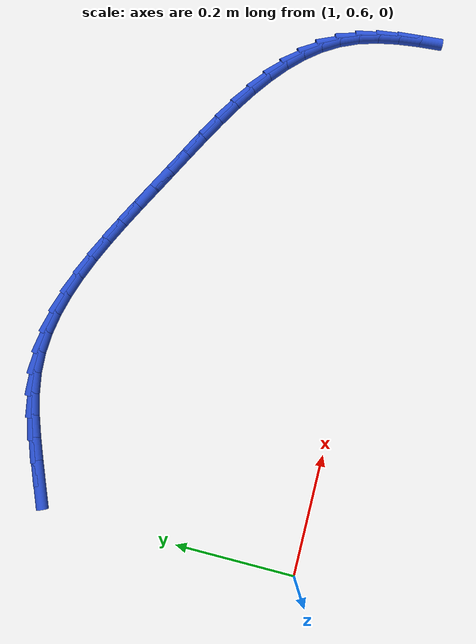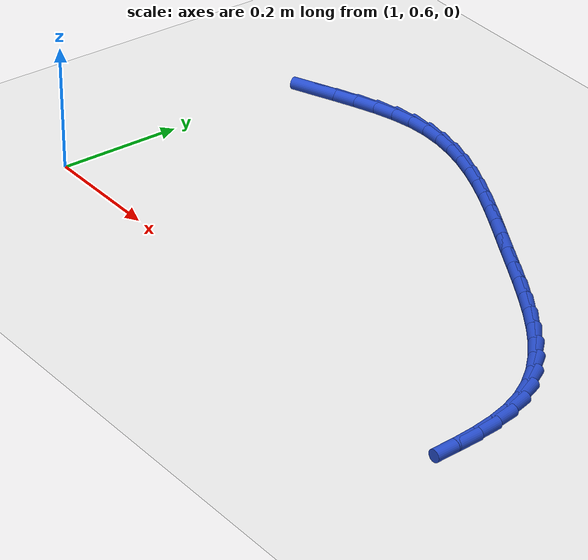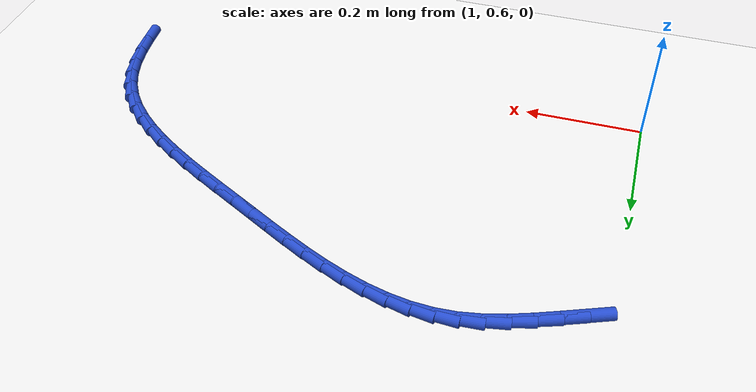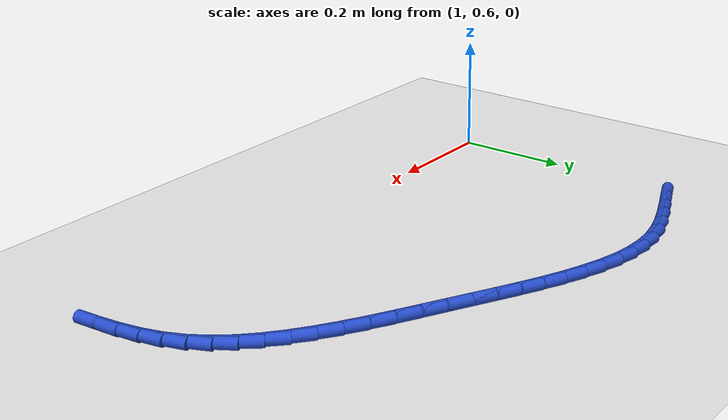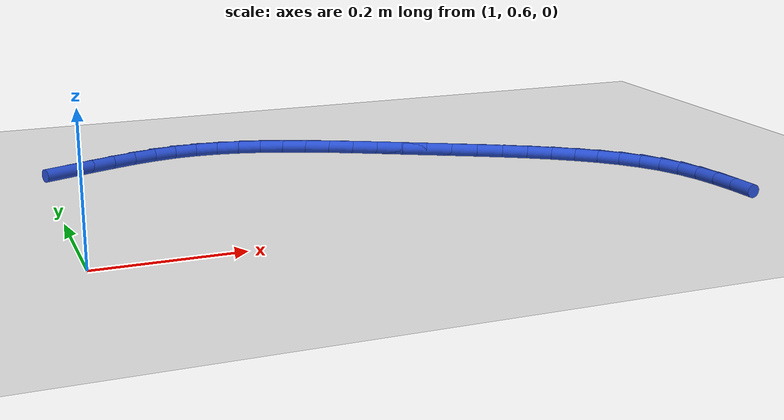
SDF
<sdf version="1.6">
 <world name="default">
  <model name="ground_plane">
   <static>1</static>
   <link name="link">
    <collision name="collision">
     <geometry><plane><normal>0 0 1</normal><size>100 100</size></plane></geometry>
     <surface><friction><ode><mu>100</mu><mu2>50</mu2></ode></friction></surface>
    </collision>
    <visual name="visual">
     <cast_shadows>0</cast_shadows>
     <geometry><plane><normal>0 0 1</normal><size>100 100</size></plane></geometry>
     <material>
      <script><uri>file://media/materials/scripts/gazebo.material</uri><name>Gazebo/WhiteGlow</name></script>
     </material>
    </visual>
   </link>
  </model>
  <model name="line">
   <link name="link_45">
    <pose>1.0397477423579957 1.0403196989083119 0.01 0 1.57 0.3899154456964672</pose>
    <collision name="collision">
     <geometry><cylinder><radius>0.01</radius><length>0.08</length></cylinder></geometry>
    </collision>
    <visual name="visual">
     <material>
      <script><name>Gazebo/Blue</name><uri>file://media/materials/scripts/gazebo.material</uri></script>
     </material>
     <geometry><cylinder><radius>0.01</radius><length>0.08</length></cylinder></geometry>
    </visual>
   </link>
   <link name="link_46">
    <pose>1.0750885546746156 1.0548432205125227 0.01 0 1.57 0.3790611823252952</pose>
    <collision name="collision">
     <geometry><cylinder><radius>0.01</radius><length>0.08</length></cylinder></geometry>
    </collision>
    <visual name="visual">
     <material>
      <script><name>Gazebo/Blue</name><uri>file://media/materials/scripts/gazebo.material</uri></script>
     </material>
     <geometry><cylinder><radius>0.01</radius><length>0.08</length></cylinder></geometry>
    </visual>
   </link>
   <link name="link_47">
    <pose>1.1101549726138393 1.0688110353576217 0.01 0 1.57 0.3427349114920555</pose>
    <collision name="collision">
     <geometry><cylinder><radius>0.01</radius><length>0.08</length></cylinder></geometry>
    </collision>
    <visual name="visual">
     <material>
      <script><name>Gazebo/Blue</name><uri>file://media/materials/scripts/gazebo.material</uri></script>
     </material>
     <geometry><cylinder><radius>0.01</radius><length>0.08</length></cylinder></geometry>
    </visual>
   </link>
   <link name="link_48">
    <pose>1.1450290878614144 1.081254712395185 0.01 0 1.57 0.27879329243875894</pose>
    <collision name="collision">
     <geometry><cylinder><radius>0.01</radius><length>0.08</length></cylinder></geometry>
    </collision>
    <visual name="visual">
     <material>
      <script><name>Gazebo/Blue</name><uri>file://media/materials/scripts/gazebo.material</uri></script>
     </material>
     <geometry><cylinder><radius>0.01</radius><length>0.08</length></cylinder></geometry>
    </visual>
   </link>
   <link name="link_49">
    <pose>1.179792992103088 1.091205820576789 0.01 0 1.57 0.1847123536411379</pose>
    <collision name="collision">
     <geometry><cylinder><radius>0.01</radius><length>0.08</length></cylinder></geometry>
    </collision>
    <visual name="visual">
     <material>
      <script><name>Gazebo/Blue</name><uri>file://media/materials/scripts/gazebo.material</uri></script>
     </material>
     <geometry><cylinder><radius>0.01</radius><length>0.08</length></cylinder></geometry>
    </visual>
   </link>
   <link name="link_50">
    <pose>1.2145287770246074 1.09769592885401 0.01 0 1.57 0.06416200103219727</pose>
    <collision name="collision">
     <geometry><cylinder><radius>0.01</radius><length>0.08</length></cylinder></geometry>
    </collision>
    <visual name="visual">
     <material>
      <script><name>Gazebo/Blue</name><uri>file://media/materials/scripts/gazebo.material</uri></script>
     </material>
     <geometry><cylinder><radius>0.01</radius><length>0.08</length></cylinder></geometry>
    </visual>
   </link>
   <link name="link_51">
    <pose>1.249310390346295 1.0999306542169203 0.01 0 1.57 -0.0541422027024987</pose>
    <collision name="collision">
     <geometry><cylinder><radius>0.01</radius><length>0.08</length></cylinder></geometry>
    </collision>
    <visual name="visual">
     <material>
      <script><name>Gazebo/Blue</name><uri>file://media/materials/scripts/gazebo.material</uri></script>
     </material>
     <geometry><cylinder><radius>0.01</radius><length>0.08</length></cylinder></geometry>
    </visual>
   </link>
   <link name="link_52">
    <pose>1.2841684554701638 1.0980415155016978 0.01 0 1.57 -0.15817192943619007</pose>
    <collision name="collision">
     <geometry><cylinder><radius>0.01</radius><length>0.08</length></cylinder></geometry>
    </collision>
    <visual name="visual">
     <material>
      <script><name>Gazebo/Blue</name><uri>file://media/materials/scripts/gazebo.material</uri></script>
     </material>
     <geometry><cylinder><radius>0.01</radius><length>0.08</length></cylinder></geometry>
    </visual>
   </link>
   <link name="link_53">
    <pose>1.3191192457168404 1.0924667130426873 0.01 0 1.57 -0.2465115295069356</pose>
    <collision name="collision">
     <geometry><cylinder><radius>0.01</radius><length>0.08</length></cylinder></geometry>
    </collision>
    <visual name="visual">
     <material>
      <script><name>Gazebo/Blue</name><uri>file://media/materials/scripts/gazebo.material</uri></script>
     </material>
     <geometry><cylinder><radius>0.01</radius><length>0.08</length></cylinder></geometry>
    </visual>
   </link>
   <link name="link_54">
    <pose>1.3541790251305217 1.0836446454246573 0.01 0 1.57 -0.31925683191862525</pose>
    <collision name="collision">
     <geometry><cylinder><radius>0.01</radius><length>0.08</length></cylinder></geometry>
    </collision>
    <visual name="visual">
     <material>
      <script><name>Gazebo/Blue</name><uri>file://media/materials/scripts/gazebo.material</uri></script>
     </material>
     <geometry><cylinder><radius>0.01</radius><length>0.08</length></cylinder></geometry>
    </visual>
   </link>
   <link name="link_55">
    <pose>1.3893640577554038 1.0720137112323747 0.01 0 1.57 -0.37734912172325175</pose>
    <collision name="collision">
     <geometry><cylinder><radius>0.01</radius><length>0.08</length></cylinder></geometry>
    </collision>
    <visual name="visual">
     <material>
      <script><name>Gazebo/Blue</name><uri>file://media/materials/scripts/gazebo.material</uri></script>
     </material>
     <geometry><cylinder><radius>0.01</radius><length>0.08</length></cylinder></geometry>
    </visual>
   </link>
   <link name="link_56">
    <pose>1.4246906076356827 1.058012309050608 0.01 0 1.57 -0.4220456286937595</pose>
    <collision name="collision">
     <geometry><cylinder><radius>0.01</radius><length>0.08</length></cylinder></geometry>
    </collision>
    <visual name="visual">
     <material>
      <script><name>Gazebo/Blue</name><uri>file://media/materials/scripts/gazebo.material</uri></script>
     </material>
     <geometry><cylinder><radius>0.01</radius><length>0.08</length></cylinder></geometry>
    </visual>
   </link>
   <link name="link_57">
    <pose>1.4601749388155547 1.042078837464124 0.01 0 1.57 -0.4545870454215999</pose>
    <collision name="collision">
     <geometry><cylinder><radius>0.01</radius><length>0.08</length></cylinder></geometry>
    </collision>
    <visual name="visual">
     <material>
      <script><name>Gazebo/Blue</name><uri>file://media/materials/scripts/gazebo.material</uri></script>
     </material>
     <geometry><cylinder><radius>0.01</radius><length>0.08</length></cylinder></geometry>
    </visual>
   </link>
   <link name="link_58">
    <pose>1.4958333153392176 1.0246516950576912 0.01 0 1.57 -0.4760238457133835</pose>
    <collision name="collision">
     <geometry><cylinder><radius>0.01</radius><length>0.08</length></cylinder></geometry>
    </collision>
    <visual name="visual">
     <material>
      <script><name>Gazebo/Blue</name><uri>file://media/materials/scripts/gazebo.material</uri></script>
     </material>
     <geometry><cylinder><radius>0.01</radius><length>0.08</length></cylinder></geometry>
    </visual>
   </link>
   <link name="link_59">
    <pose>1.5316820012508652 1.006169280416077 0.01 0 1.57 -0.4871420438049215</pose>
    <collision name="collision">
     <geometry><cylinder><radius>0.01</radius><length>0.08</length></cylinder></geometry>
    </collision>
    <visual name="visual">
     <material>
      <script><name>Gazebo/Blue</name><uri>file://media/materials/scripts/gazebo.material</uri></script>
     </material>
     <geometry><cylinder><radius>0.01</radius><length>0.08</length></cylinder></geometry>
    </visual>
   </link>
   <link name="link_60">
    <pose>1.5677372605946958 0.9870699921240488 0.01 0 1.57 -0.4884539452697681</pose>
    <collision name="collision">
     <geometry><cylinder><radius>0.01</radius><length>0.08</length></cylinder></geometry>
    </collision>
    <visual name="visual">
     <material>
      <script><name>Gazebo/Blue</name><uri>file://media/materials/scripts/gazebo.material</uri></script>
     </material>
     <geometry><cylinder><radius>0.01</radius><length>0.08</length></cylinder></geometry>
    </visual>
   </link>
   <link name="link_61">
    <pose>1.6040150842442444 0.9677918162568404 0.01 0 1.57 -0.4852311230544129</pose>
    <collision name="collision">
     <geometry><cylinder><radius>0.01</radius><length>0.08</length></cylinder></geometry>
    </collision>
    <visual name="visual">
     <material>
      <script><name>Gazebo/Blue</name><uri>file://media/materials/scripts/gazebo.material</uri></script>
     </material>
     <geometry><cylinder><radius>0.01</radius><length>0.08</length></cylinder></geometry>
    </visual>
   </link>
   <link name="link_62">
    <pose>1.6404160164709705 0.9485984052916058 0.01 0 1.57 -0.49037742284695524</pose>
    <collision name="collision">
     <geometry><cylinder><radius>0.01</radius><length>0.08</length></cylinder></geometry>
    </collision>
    <visual name="visual">
     <material>
      <script><name>Gazebo/Blue</name><uri>file://media/materials/scripts/gazebo.material</uri></script>
     </material>
     <geometry><cylinder><radius>0.01</radius><length>0.08</length></cylinder></geometry>
    </visual>
   </link>
   <link name="link_63">
    <pose>1.6765465093799068 0.9293093090241081 0.01 0 1.57 -0.5061690376673833</pose>
    <collision name="collision">
     <geometry><cylinder><radius>0.01</radius><length>0.08</length></cylinder></geometry>
    </collision>
    <visual name="visual">
     <material>
      <script><name>Gazebo/Blue</name><uri>file://media/materials/scripts/gazebo.material</uri></script>
     </material>
     <geometry><cylinder><radius>0.01</radius><length>0.08</length></cylinder></geometry>
    </visual>
   </link>
   <link name="link_64">
    <pose>1.7119668687185632 0.9096743925612568 0.01 0 1.57 -0.533277753319224</pose>
    <collision name="collision">
     <geometry><cylinder><radius>0.01</radius><length>0.08</length></cylinder></geometry>
    </collision>
    <visual name="visual">
     <material>
      <script><name>Gazebo/Blue</name><uri>file://media/materials/scripts/gazebo.material</uri></script>
     </material>
     <geometry><cylinder><radius>0.01</radius><length>0.08</length></cylinder></geometry>
    </visual>
   </link>
   <link name="link_65">
    <pose>1.7462374002344507 0.8894435210099612 0.01 0 1.57 -0.5728027711901966</pose>
    <collision name="collision">
     <geometry><cylinder><radius>0.01</radius><length>0.08</length></cylinder></geometry>
    </collision>
    <visual name="visual">
     <material>
      <script><name>Gazebo/Blue</name><uri>file://media/materials/scripts/gazebo.material</uri></script>
     </material>
     <geometry><cylinder><radius>0.01</radius><length>0.08</length></cylinder></geometry>
    </visual>
   </link>
   <link name="link_66">
    <pose>1.778918409675081 0.8683665594771303 0.01 0 1.57 -0.626251775047361</pose>
    <collision name="collision">
     <geometry><cylinder><radius>0.01</radius><length>0.08</length></cylinder></geometry>
    </collision>
    <visual name="visual">
     <material>
      <script><name>Gazebo/Blue</name><uri>file://media/materials/scripts/gazebo.material</uri></script>
     </material>
     <geometry><cylinder><radius>0.01</radius><length>0.08</length></cylinder></geometry>
    </visual>
   </link>
   <link name="link_67">
    <pose>1.8095702027879634 0.8461933730696737 0.01 0 1.57 -0.6954458725464926</pose>
    <collision name="collision">
     <geometry><cylinder><radius>0.01</radius><length>0.08</length></cylinder></geometry>
    </collision>
    <visual name="visual">
     <material>
      <script><name>Gazebo/Blue</name><uri>file://media/materials/scripts/gazebo.material</uri></script>
     </material>
     <geometry><cylinder><radius>0.01</radius><length>0.08</length></cylinder></geometry>
    </visual>
   </link>
   <link name="link_68">
    <pose>1.8377530853206092 0.8226738268945007 0.01 0 1.57 -0.7822579501895124</pose>
    <collision name="collision">
     <geometry><cylinder><radius>0.01</radius><length>0.08</length></cylinder></geometry>
    </collision>
    <visual name="visual">
     <material>
      <script><name>Gazebo/Blue</name><uri>file://media/materials/scripts/gazebo.material</uri></script>
     </material>
     <geometry><cylinder><radius>0.01</radius><length>0.08</length></cylinder></geometry>
    </visual>
   </link>
   <link name="link_69">
    <pose>1.8630273630205296 0.7975577860585206 0.01 0 1.57 -0.8880597192138523</pose>
    <collision name="collision">
     <geometry><cylinder><radius>0.01</radius><length>0.08</length></cylinder></geometry>
    </collision>
    <visual name="visual">
     <material>
      <script><name>Gazebo/Blue</name><uri>file://media/materials/scripts/gazebo.material</uri></script>
     </material>
     <geometry><cylinder><radius>0.01</radius><length>0.08</length></cylinder></geometry>
    </visual>
   </link>
   <link name="link_70">
    <pose>1.8849533416352353 0.7705951156686427 0.01 0 1.57 -1.0127951322347941</pose>
    <collision name="collision">
     <geometry><cylinder><radius>0.01</radius><length>0.08</length></cylinder></geometry>
    </collision>
    <visual name="visual">
     <material>
      <script><name>Gazebo/Blue</name><uri>file://media/materials/scripts/gazebo.material</uri></script>
     </material>
     <geometry><cylinder><radius>0.01</radius><length>0.08</length></cylinder></geometry>
    </visual>
   </link>
   <link name="link_71">
    <pose>1.9030913269122365 0.7415356808317761 0.01 0 1.57 -1.15199544053252</pose>
    <collision name="collision">
     <geometry><cylinder><radius>0.01</radius><length>0.08</length></cylinder></geometry>
    </collision>
    <visual name="visual">
     <material>
      <script><name>Gazebo/Blue</name><uri>file://media/materials/scripts/gazebo.material</uri></script>
     </material>
     <geometry><cylinder><radius>0.01</radius><length>0.08</length></cylinder></geometry>
    </visual>
   </link>
   <link name="link_72">
    <pose>1.917058177852745 0.7101590223521048 0.01 0 1.57 -1.2787720033318069</pose>
    <collision name="collision">
     <geometry><cylinder><radius>0.01</radius><length>0.08</length></cylinder></geometry>
    </collision>
    <visual name="visual">
     <material>
      <script><name>Gazebo/Blue</name><uri>file://media/materials/scripts/gazebo.material</uri></script>
     </material>
     <geometry><cylinder><radius>0.01</radius><length>0.08</length></cylinder></geometry>
    </visual>
   </link>
   <link name="link_73">
    <pose>1.9271468169098624 0.6765994378872829 0.01 0 1.57 -1.3768385615166818</pose>
    <collision name="collision">
     <geometry><cylinder><radius>0.01</radius><length>0.08</length></cylinder></geometry>
    </collision>
    <visual name="visual">
     <material>
      <script><name>Gazebo/Blue</name><uri>file://media/materials/scripts/gazebo.material</uri></script>
     </material>
     <geometry><cylinder><radius>0.01</radius><length>0.08</length></cylinder></geometry>
    </visual>
   </link>
   <link name="link_74">
    <pose>1.9340953498061966 0.6412248301145322 0.01 0 1.57 -1.44772077038878</pose>
    <collision name="collision">
     <geometry><cylinder><radius>0.01</radius><length>0.08</length></cylinder></geometry>
    </collision>
    <visual name="visual">
     <material>
      <script><name>Gazebo/Blue</name><uri>file://media/materials/scripts/gazebo.material</uri></script>
     </material>
     <geometry><cylinder><radius>0.01</radius><length>0.08</length></cylinder></geometry>
    </visual>
   </link>
   <link name="link_75">
    <pose>1.9386497176469204 0.6044072132418151 0.01 0 1.57 -1.4942439115816994</pose>
    <collision name="collision">
     <geometry><cylinder><radius>0.01</radius><length>0.08</length></cylinder></geometry>
    </collision>
    <visual name="visual">
     <material>
      <script><name>Gazebo/Blue</name><uri>file://media/materials/scripts/gazebo.material</uri></script>
     </material>
     <geometry><cylinder><radius>0.01</radius><length>0.08</length></cylinder></geometry>
    </visual>
   </link>
  </model>
 </world>
</sdf>
